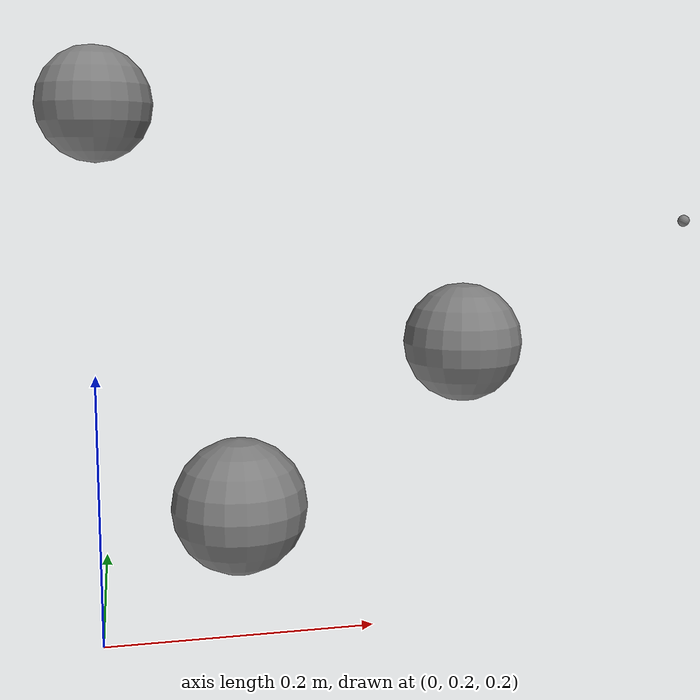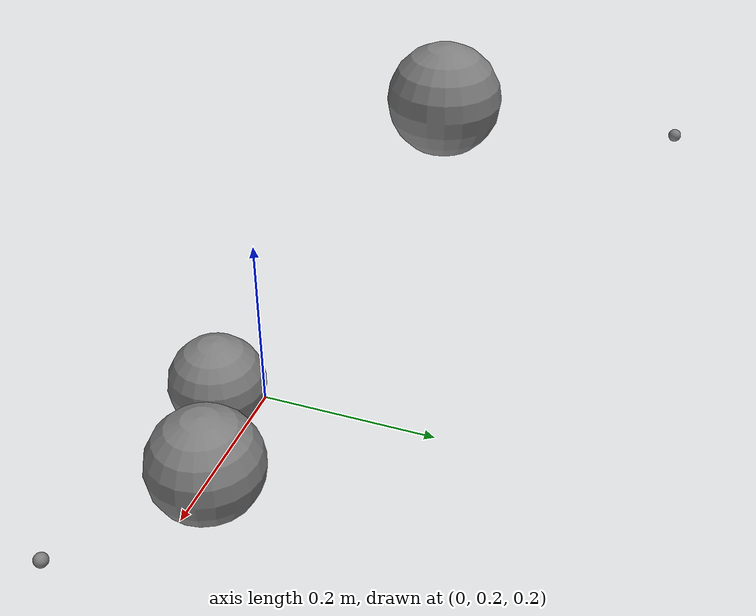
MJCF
<mujoco><option timestep=".002" gravity="0 0 0" jacobian="dense"/><worldbody><body name="base" pos=".1 .2 .3"><joint name="j0" type="slide" axis="1 0 0"/><joint name="j1" type="hinge" axis="0 0 1"/><geom size=".05" mass="1"/>
<body name="tip" pos=".2 .1 .1"><joint name="j2" axis="0 1 0"/><geom size=".05" mass="1"/><site name="s" pos=".2 0 .1" quat=".9 .1 .2 .3"/></body>
<body name="ref" pos="-.1 .2 .3"><joint name="j3" axis="1 0 0"/><geom size=".05" mass="1"/><site name="r" pos="0 .2 0" quat=".8 -.1 .3 .2"/></body></body></worldbody><tendon><fixed name="t"><joint joint="j0" coef="1"/><joint joint="j2" coef="-.3"/></fixed></tendon><actuator><general tendon="t" gear="-2"/></actuator></mujoco>
